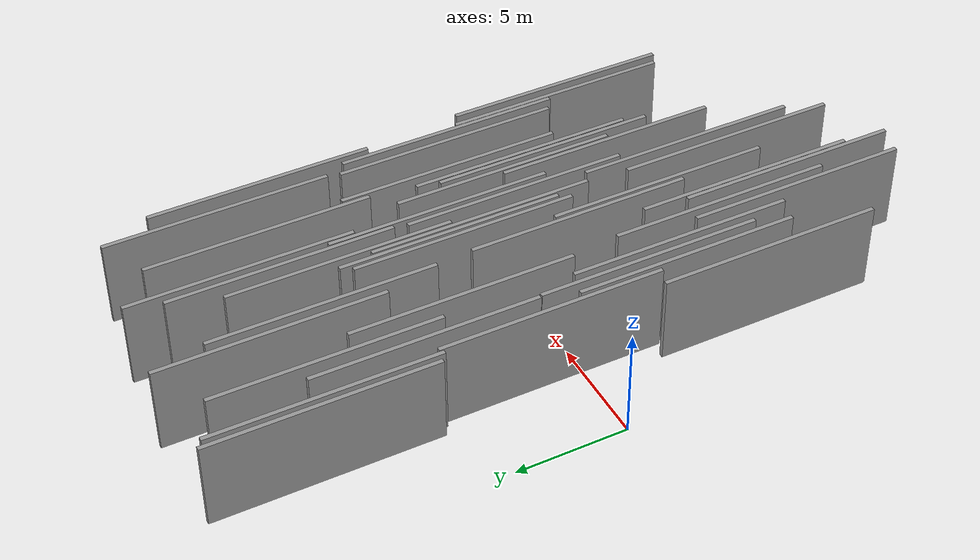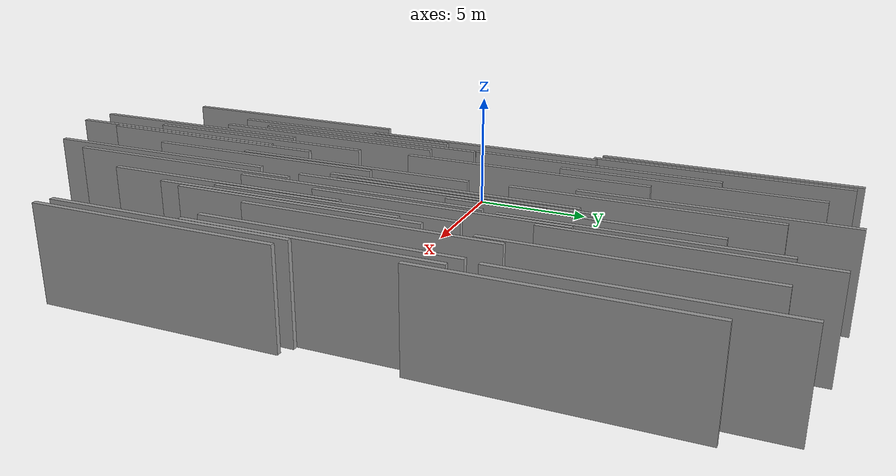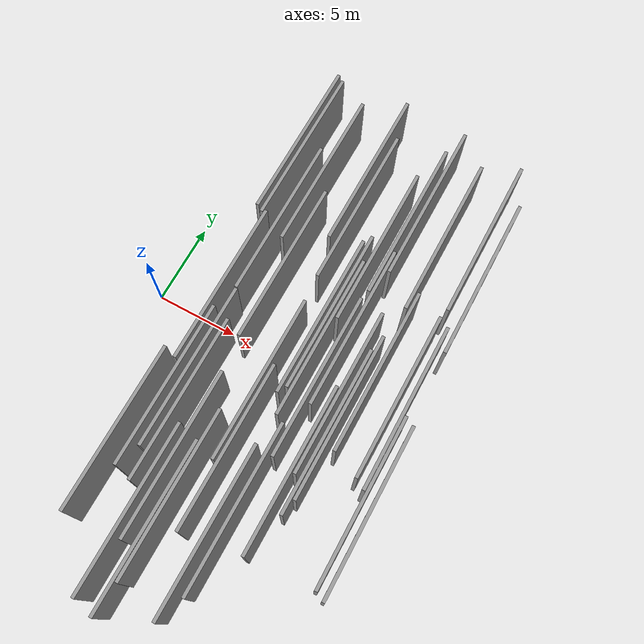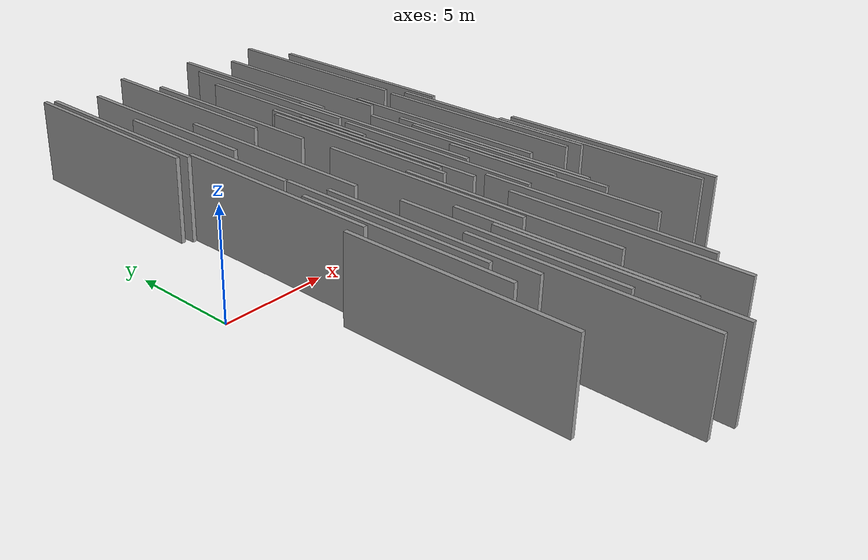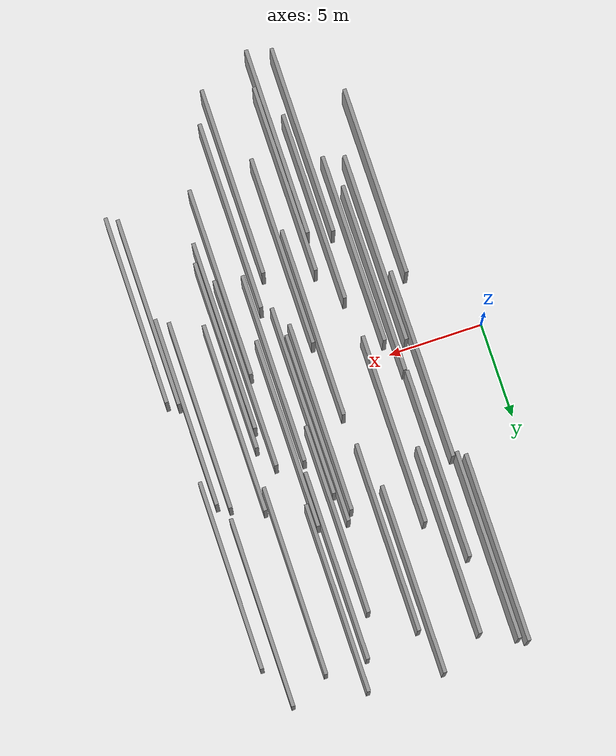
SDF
<sdf version="1.6">
 <world name="default">
  <scene>
   <sky><clouds><speed>12</speed></clouds></sky>
   <ambient>0.4 0.4 0.4 1</ambient>
   <background>0.7 0.7 0.7 1</background>
   <shadows>1</shadows>
  </scene>
  <gravity>0 0 -9.8066</gravity>
  <magnetic_field>6e-06 2.3e-05 -4.2e-05</magnetic_field>
  <physics default="0" name="default_physics" type="ode">
   <ode>
    <solver>
     <type>quick</type>
     <iters>10</iters>
     <sor>1.0</sor>
     <use_dynamic_moi_rescaling>0</use_dynamic_moi_rescaling>
    </solver>
    <constraints>
     <cfm>0</cfm>
     <erp>0.2</erp>
     <contact_max_correcting_vel>100</contact_max_correcting_vel>
     <contact_surface_layer>0.001</contact_surface_layer>
    </constraints>
   </ode>
   <max_step_size>0.004</max_step_size>
   <real_time_factor>1</real_time_factor>
   <real_time_update_rate>250</real_time_update_rate>
  </physics>
  <light name="sun" type="directional">
   <pose>0 0 10 0 0 0</pose>
   <diffuse>0.8 0.8 0.8 1</diffuse>
   <specular>0.2 0.2 0.2 1</specular>
   <attenuation>
    <range>1000</range>
    <constant>0.9</constant>
    <linear>0.01</linear>
    <quadratic>0.001</quadratic>
   </attenuation>
   <direction>-0.5 0.1 -0.9</direction>
  </light>
  <model name="grey_wall_1">
   <static>1</static>
   <pose>4.6352 6.4639 0.0 0.000000 0.000000 1.570796</pose>
   <link name="link">
    <pose>0 0 2.00 0 0 0</pose>
    <collision name="collision"><geometry><box><size>10.00 0.2 4.00</size></box></geometry></collision>
    <visual name="visual">
     <cast_shadows>0</cast_shadows>
     <geometry><box><size>10.00 0.2 4.00</size></box></geometry>
     <material>
      <script>
       <uri>model://grey_wall/materials/scripts</uri>
       <uri>model://grey_wall/materials/textures</uri>
       <name>vrc/grey_wall</name>
      </script>
     </material>
    </visual>
   </link>
  </model>
  <model name="grey_wall_2">
   <static>1</static>
   <pose>13.7201 0.9784 0.0 0.000000 0.000000 1.570796</pose>
   <link name="link">
    <pose>0 0 2.00 0 0 0</pose>
    <collision name="collision"><geometry><box><size>10.00 0.2 4.00</size></box></geometry></collision>
    <visual name="visual">
     <cast_shadows>0</cast_shadows>
     <geometry><box><size>10.00 0.2 4.00</size></box></geometry>
     <material>
      <script>
       <uri>model://grey_wall/materials/scripts</uri>
       <uri>model://grey_wall/materials/textures</uri>
       <name>vrc/grey_wall</name>
      </script>
     </material>
    </visual>
   </link>
  </model>
  <model name="grey_wall_3">
   <static>1</static>
   <pose>5.3705 10.3229 0.0 0.000000 0.000000 1.570796</pose>
   <link name="link">
    <pose>0 0 2.00 0 0 0</pose>
    <collision name="collision"><geometry><box><size>10.00 0.2 4.00</size></box></geometry></collision>
    <visual name="visual">
     <cast_shadows>0</cast_shadows>
     <geometry><box><size>10.00 0.2 4.00</size></box></geometry>
     <material>
      <script>
       <uri>model://grey_wall/materials/scripts</uri>
       <uri>model://grey_wall/materials/textures</uri>
       <name>vrc/grey_wall</name>
      </script>
     </material>
    </visual>
   </link>
  </model>
  <model name="grey_wall_4">
   <static>1</static>
   <pose>5.9149 -11.5257 0.0 0.000000 0.000000 1.570796</pose>
   <link name="link">
    <pose>0 0 2.00 0 0 0</pose>
    <collision name="collision"><geometry><box><size>10.00 0.2 4.00</size></box></geometry></collision>
    <visual name="visual">
     <cast_shadows>0</cast_shadows>
     <geometry><box><size>10.00 0.2 4.00</size></box></geometry>
     <material>
      <script>
       <uri>model://grey_wall/materials/scripts</uri>
       <uri>model://grey_wall/materials/textures</uri>
       <name>vrc/grey_wall</name>
      </script>
     </material>
    </visual>
   </link>
  </model>
  <model name="grey_wall_5">
   <static>1</static>
   <pose>11.4226 2.5769 0.0 0.000000 0.000000 1.570796</pose>
   <link name="link">
    <pose>0 0 2.00 0 0 0</pose>
    <collision name="collision"><geometry><box><size>10.00 0.2 4.00</size></box></geometry></collision>
    <visual name="visual">
     <cast_shadows>0</cast_shadows>
     <geometry><box><size>10.00 0.2 4.00</size></box></geometry>
     <material>
      <script>
       <uri>model://grey_wall/materials/scripts</uri>
       <uri>model://grey_wall/materials/textures</uri>
       <name>vrc/grey_wall</name>
      </script>
     </material>
    </visual>
   </link>
  </model>
  <model name="grey_wall_6">
   <static>1</static>
   <pose>9.5640 2.3115 0.0 0.000000 0.000000 1.570796</pose>
   <link name="link">
    <pose>0 0 2.00 0 0 0</pose>
    <collision name="collision"><geometry><box><size>10.00 0.2 4.00</size></box></geometry></collision>
    <visual name="visual">
     <cast_shadows>0</cast_shadows>
     <geometry><box><size>10.00 0.2 4.00</size></box></geometry>
     <material>
      <script>
       <uri>model://grey_wall/materials/scripts</uri>
       <uri>model://grey_wall/materials/textures</uri>
       <name>vrc/grey_wall</name>
      </script>
     </material>
    </visual>
   </link>
  </model>
  <model name="grey_wall_7">
   <static>1</static>
   <pose>13.1284 -2.2053 0.0 0.000000 0.000000 1.570796</pose>
   <link name="link">
    <pose>0 0 2.00 0 0 0</pose>
    <collision name="collision"><geometry><box><size>10.00 0.2 4.00</size></box></geometry></collision>
    <visual name="visual">
     <cast_shadows>0</cast_shadows>
     <geometry><box><size>10.00 0.2 4.00</size></box></geometry>
     <material>
      <script>
       <uri>model://grey_wall/materials/scripts</uri>
       <uri>model://grey_wall/materials/textures</uri>
       <name>vrc/grey_wall</name>
      </script>
     </material>
    </visual>
   </link>
  </model>
  <model name="grey_wall_8">
   <static>1</static>
   <pose>4.7058 -3.6011 0.0 0.000000 0.000000 1.570796</pose>
   <link name="link">
    <pose>0 0 2.00 0 0 0</pose>
    <collision name="collision"><geometry><box><size>10.00 0.2 4.00</size></box></geometry></collision>
    <visual name="visual">
     <cast_shadows>0</cast_shadows>
     <geometry><box><size>10.00 0.2 4.00</size></box></geometry>
     <material>
      <script>
       <uri>model://grey_wall/materials/scripts</uri>
       <uri>model://grey_wall/materials/textures</uri>
       <name>vrc/grey_wall</name>
      </script>
     </material>
    </visual>
   </link>
  </model>
  <model name="grey_wall_9">
   <static>1</static>
   <pose>10.6544 -8.9496 0.0 0.000000 0.000000 1.570796</pose>
   <link name="link">
    <pose>0 0 2.00 0 0 0</pose>
    <collision name="collision"><geometry><box><size>10.00 0.2 4.00</size></box></geometry></collision>
    <visual name="visual">
     <cast_shadows>0</cast_shadows>
     <geometry><box><size>10.00 0.2 4.00</size></box></geometry>
     <material>
      <script>
       <uri>model://grey_wall/materials/scripts</uri>
       <uri>model://grey_wall/materials/textures</uri>
       <name>vrc/grey_wall</name>
      </script>
     </material>
    </visual>
   </link>
  </model>
  <model name="grey_wall_10">
   <static>1</static>
   <pose>4.1410 -5.0530 0.0 0.000000 0.000000 1.570796</pose>
   <link name="link">
    <pose>0 0 2.00 0 0 0</pose>
    <collision name="collision"><geometry><box><size>10.00 0.2 4.00</size></box></geometry></collision>
    <visual name="visual">
     <cast_shadows>0</cast_shadows>
     <geometry><box><size>10.00 0.2 4.00</size></box></geometry>
     <material>
      <script>
       <uri>model://grey_wall/materials/scripts</uri>
       <uri>model://grey_wall/materials/textures</uri>
       <name>vrc/grey_wall</name>
      </script>
     </material>
    </visual>
   </link>
  </model>
  <model name="grey_wall_11">
   <static>1</static>
   <pose>12.4754 -1.0310 0.0 0.000000 0.000000 1.570796</pose>
   <link name="link">
    <pose>0 0 2.00 0 0 0</pose>
    <collision name="collision"><geometry><box><size>10.00 0.2 4.00</size></box></geometry></collision>
    <visual name="visual">
     <cast_shadows>0</cast_shadows>
     <geometry><box><size>10.00 0.2 4.00</size></box></geometry>
     <material>
      <script>
       <uri>model://grey_wall/materials/scripts</uri>
       <uri>model://grey_wall/materials/textures</uri>
       <name>vrc/grey_wall</name>
      </script>
     </material>
    </visual>
   </link>
  </model>
  <model name="grey_wall_12">
   <static>1</static>
   <pose>9.9890 -10.5965 0.0 0.000000 0.000000 1.570796</pose>
   <link name="link">
    <pose>0 0 2.00 0 0 0</pose>
    <collision name="collision"><geometry><box><size>10.00 0.2 4.00</size></box></geometry></collision>
    <visual name="visual">
     <cast_shadows>0</cast_shadows>
     <geometry><box><size>10.00 0.2 4.00</size></box></geometry>
     <material>
      <script>
       <uri>model://grey_wall/materials/scripts</uri>
       <uri>model://grey_wall/materials/textures</uri>
       <name>vrc/grey_wall</name>
      </script>
     </material>
    </visual>
   </link>
  </model>
  <model name="grey_wall_13">
   <static>1</static>
   <pose>7.7050 11.6390 0.0 0.000000 0.000000 1.570796</pose>
   <link name="link">
    <pose>0 0 2.00 0 0 0</pose>
    <collision name="collision"><geometry><box><size>10.00 0.2 4.00</size></box></geometry></collision>
    <visual name="visual">
     <cast_shadows>0</cast_shadows>
     <geometry><box><size>10.00 0.2 4.00</size></box></geometry>
     <material>
      <script>
       <uri>model://grey_wall/materials/scripts</uri>
       <uri>model://grey_wall/materials/textures</uri>
       <name>vrc/grey_wall</name>
      </script>
     </material>
    </visual>
   </link>
  </model>
  <model name="grey_wall_14">
   <static>1</static>
   <pose>15.3601 0.2854 0.0 0.000000 0.000000 1.570796</pose>
   <link name="link">
    <pose>0 0 2.00 0 0 0</pose>
    <collision name="collision"><geometry><box><size>10.00 0.2 4.00</size></box></geometry></collision>
    <visual name="visual">
     <cast_shadows>0</cast_shadows>
     <geometry><box><size>10.00 0.2 4.00</size></box></geometry>
     <material>
      <script>
       <uri>model://grey_wall/materials/scripts</uri>
       <uri>model://grey_wall/materials/textures</uri>
       <name>vrc/grey_wall</name>
      </script>
     </material>
    </visual>
   </link>
  </model>
  <model name="grey_wall_15">
   <static>1</static>
   <pose>8.2668 9.2103 0.0 0.000000 0.000000 1.570796</pose>
   <link name="link">
    <pose>0 0 2.00 0 0 0</pose>
    <collision name="collision"><geometry><box><size>10.00 0.2 4.00</size></box></geometry></collision>
    <visual name="visual">
     <cast_shadows>0</cast_shadows>
     <geometry><box><size>10.00 0.2 4.00</size></box></geometry>
     <material>
      <script>
       <uri>model://grey_wall/materials/scripts</uri>
       <uri>model://grey_wall/materials/textures</uri>
       <name>vrc/grey_wall</name>
      </script>
     </material>
    </visual>
   </link>
  </model>
  <model name="grey_wall_16">
   <static>1</static>
   <pose>6.4407 -8.0639 0.0 0.000000 0.000000 1.570796</pose>
   <link name="link">
    <pose>0 0 2.00 0 0 0</pose>
    <collision name="collision"><geometry><box><size>10.00 0.2 4.00</size></box></geometry></collision>
    <visual name="visual">
     <cast_shadows>0</cast_shadows>
     <geometry><box><size>10.00 0.2 4.00</size></box></geometry>
     <material>
      <script>
       <uri>model://grey_wall/materials/scripts</uri>
       <uri>model://grey_wall/materials/textures</uri>
       <name>vrc/grey_wall</name>
      </script>
     </material>
    </visual>
   </link>
  </model>
  <model name="grey_wall_17">
   <static>1</static>
   <pose>12.2205 -5.8652 0.0 0.000000 0.000000 1.570796</pose>
   <link name="link">
    <pose>0 0 2.00 0 0 0</pose>
    <collision name="collision"><geometry><box><size>10.00 0.2 4.00</size></box></geometry></collision>
    <visual name="visual">
     <cast_shadows>0</cast_shadows>
     <geometry><box><size>10.00 0.2 4.00</size></box></geometry>
     <material>
      <script>
       <uri>model://grey_wall/materials/scripts</uri>
       <uri>model://grey_wall/materials/textures</uri>
       <name>vrc/grey_wall</name>
      </script>
     </material>
    </visual>
   </link>
  </model>
  <model name="grey_wall_18">
   <static>1</static>
   <pose>5.2064 -5.3615 0.0 0.000000 0.000000 1.570796</pose>
   <link name="link">
    <pose>0 0 2.00 0 0 0</pose>
    <collision name="collision"><geometry><box><size>10.00 0.2 4.00</size></box></geometry></collision>
    <visual name="visual">
     <cast_shadows>0</cast_shadows>
     <geometry><box><size>10.00 0.2 4.00</size></box></geometry>
     <material>
      <script>
       <uri>model://grey_wall/materials/scripts</uri>
       <uri>model://grey_wall/materials/textures</uri>
       <name>vrc/grey_wall</name>
      </script>
     </material>
    </visual>
   </link>
  </model>
  <model name="grey_wall_19">
   <static>1</static>
   <pose>7.1819 -11.8583 0.0 0.000000 0.000000 1.570796</pose>
   <link name="link">
    <pose>0 0 2.00 0 0 0</pose>
    <collision name="collision"><geometry><box><size>10.00 0.2 4.00</size></box></geometry></collision>
    <visual name="visual">
     <cast_shadows>0</cast_shadows>
     <geometry><box><size>10.00 0.2 4.00</size></box></geometry>
     <material>
      <script>
       <uri>model://grey_wall/materials/scripts</uri>
       <uri>model://grey_wall/materials/textures</uri>
       <name>vrc/grey_wall</name>
      </script>
     </material>
    </visual>
   </link>
  </model>
  <model name="grey_wall_20">
   <static>1</static>
   <pose>6.2011 4.0828 0.0 0.000000 0.000000 1.570796</pose>
   <link name="link">
    <pose>0 0 2.00 0 0 0</pose>
    <collision name="collision"><geometry><box><size>10.00 0.2 4.00</size></box></geometry></collision>
    <visual name="visual">
     <cast_shadows>0</cast_shadows>
     <geometry><box><size>10.00 0.2 4.00</size></box></geometry>
     <material>
      <script>
       <uri>model://grey_wall/materials/scripts</uri>
       <uri>model://grey_wall/materials/textures</uri>
       <name>vrc/grey_wall</name>
      </script>
     </material>
    </visual>
   </link>
  </model>
  <model name="grey_wall_21">
   <static>1</static>
   <pose>16.7433 -5.8524 0.0 0.000000 0.000000 1.570796</pose>
   <link name="link">
    <pose>0 0 2.00 0 0 0</pose>
    <collision name="collision"><geometry><box><size>10.00 0.2 4.00</size></box></geometry></collision>
    <visual name="visual">
     <cast_shadows>0</cast_shadows>
     <geometry><box><size>10.00 0.2 4.00</size></box></geometry>
     <material>
      <script>
       <uri>model://grey_wall/materials/scripts</uri>
       <uri>model://grey_wall/materials/textures</uri>
       <name>vrc/grey_wall</name>
      </script>
     </material>
    </visual>
   </link>
  </model>
  <model name="grey_wall_22">
   <static>1</static>
   <pose>11.6684 11.3239 0.0 0.000000 0.000000 1.570796</pose>
   <link name="link">
    <pose>0 0 2.00 0 0 0</pose>
    <collision name="collision"><geometry><box><size>10.00 0.2 4.00</size></box></geometry></collision>
    <visual name="visual">
     <cast_shadows>0</cast_shadows>
     <geometry><box><size>10.00 0.2 4.00</size></box></geometry>
     <material>
      <script>
       <uri>model://grey_wall/materials/scripts</uri>
       <uri>model://grey_wall/materials/textures</uri>
       <name>vrc/grey_wall</name>
      </script>
     </material>
    </visual>
   </link>
  </model>
  <model name="grey_wall_23">
   <static>1</static>
   <pose>10.4020 7.5210 0.0 0.000000 0.000000 1.570796</pose>
   <link name="link">
    <pose>0 0 2.00 0 0 0</pose>
    <collision name="collision"><geometry><box><size>10.00 0.2 4.00</size></box></geometry></collision>
    <visual name="visual">
     <cast_shadows>0</cast_shadows>
     <geometry><box><size>10.00 0.2 4.00</size></box></geometry>
     <material>
      <script>
       <uri>model://grey_wall/materials/scripts</uri>
       <uri>model://grey_wall/materials/textures</uri>
       <name>vrc/grey_wall</name>
      </script>
     </material>
    </visual>
   </link>
  </model>
  <model name="grey_wall_24">
   <static>1</static>
   <pose>15.5157 10.8172 0.0 0.000000 0.000000 1.570796</pose>
   <link name="link">
    <pose>0 0 2.00 0 0 0</pose>
    <collision name="collision"><geometry><box><size>10.00 0.2 4.00</size></box></geometry></collision>
    <visual name="visual">
     <cast_shadows>0</cast_shadows>
     <geometry><box><size>10.00 0.2 4.00</size></box></geometry>
     <material>
      <script>
       <uri>model://grey_wall/materials/scripts</uri>
       <uri>model://grey_wall/materials/textures</uri>
       <name>vrc/grey_wall</name>
      </script>
     </material>
    </visual>
   </link>
  </model>
  <model name="grey_wall_25">
   <static>1</static>
   <pose>15.9691 -0.0881 0.0 0.000000 0.000000 1.570796</pose>
   <link name="link">
    <pose>0 0 2.00 0 0 0</pose>
    <collision name="collision"><geometry><box><size>10.00 0.2 4.00</size></box></geometry></collision>
    <visual name="visual">
     <cast_shadows>0</cast_shadows>
     <geometry><box><size>10.00 0.2 4.00</size></box></geometry>
     <material>
      <script>
       <uri>model://grey_wall/materials/scripts</uri>
       <uri>model://grey_wall/materials/textures</uri>
       <name>vrc/grey_wall</name>
      </script>
     </material>
    </visual>
   </link>
  </model>
  <model name="grey_wall_26">
   <static>1</static>
   <pose>11.0374 -0.8071 0.0 0.000000 0.000000 1.570796</pose>
   <link name="link">
    <pose>0 0 2.00 0 0 0</pose>
    <collision name="collision"><geometry><box><size>10.00 0.2 4.00</size></box></geometry></collision>
    <visual name="visual">
     <cast_shadows>0</cast_shadows>
     <geometry><box><size>10.00 0.2 4.00</size></box></geometry>
     <material>
      <script>
       <uri>model://grey_wall/materials/scripts</uri>
       <uri>model://grey_wall/materials/textures</uri>
       <name>vrc/grey_wall</name>
      </script>
     </material>
    </visual>
   </link>
  </model>
  <model name="grey_wall_27">
   <static>1</static>
   <pose>3.5579 11.1885 0.0 0.000000 0.000000 1.570796</pose>
   <link name="link">
    <pose>0 0 2.00 0 0 0</pose>
    <collision name="collision"><geometry><box><size>10.00 0.2 4.00</size></box></geometry></collision>
    <visual name="visual">
     <cast_shadows>0</cast_shadows>
     <geometry><box><size>10.00 0.2 4.00</size></box></geometry>
     <material>
      <script>
       <uri>model://grey_wall/materials/scripts</uri>
       <uri>model://grey_wall/materials/textures</uri>
       <name>vrc/grey_wall</name>
      </script>
     </material>
    </visual>
   </link>
  </model>
  <model name="grey_wall_28">
   <static>1</static>
   <pose>3.1534 11.4542 0.0 0.000000 0.000000 1.570796</pose>
   <link name="link">
    <pose>0 0 2.00 0 0 0</pose>
    <collision name="collision"><geometry><box><size>10.00 0.2 4.00</size></box></geometry></collision>
    <visual name="visual">
     <cast_shadows>0</cast_shadows>
     <geometry><box><size>10.00 0.2 4.00</size></box></geometry>
     <material>
      <script>
       <uri>model://grey_wall/materials/scripts</uri>
       <uri>model://grey_wall/materials/textures</uri>
       <name>vrc/grey_wall</name>
      </script>
     </material>
    </visual>
   </link>
  </model>
  <model name="grey_wall_29">
   <static>1</static>
   <pose>8.3974 -2.4082 0.0 0.000000 0.000000 1.570796</pose>
   <link name="link">
    <pose>0 0 2.00 0 0 0</pose>
    <collision name="collision"><geometry><box><size>10.00 0.2 4.00</size></box></geometry></collision>
    <visual name="visual">
     <cast_shadows>0</cast_shadows>
     <geometry><box><size>10.00 0.2 4.00</size></box></geometry>
     <material>
      <script>
       <uri>model://grey_wall/materials/scripts</uri>
       <uri>model://grey_wall/materials/textures</uri>
       <name>vrc/grey_wall</name>
      </script>
     </material>
    </visual>
   </link>
  </model>
  <model name="grey_wall_30">
   <static>1</static>
   <pose>10.1440 1.2391 0.0 0.000000 0.000000 1.570796</pose>
   <link name="link">
    <pose>0 0 2.00 0 0 0</pose>
    <collision name="collision"><geometry><box><size>10.00 0.2 4.00</size></box></geometry></collision>
    <visual name="visual">
     <cast_shadows>0</cast_shadows>
     <geometry><box><size>10.00 0.2 4.00</size></box></geometry>
     <material>
      <script>
       <uri>model://grey_wall/materials/scripts</uri>
       <uri>model://grey_wall/materials/textures</uri>
       <name>vrc/grey_wall</name>
      </script>
     </material>
    </visual>
   </link>
  </model>
  <model name="grey_wall_31">
   <static>1</static>
   <pose>16.4245 8.5296 0.0 0.000000 0.000000 1.570796</pose>
   <link name="link">
    <pose>0 0 2.00 0 0 0</pose>
    <collision name="collision"><geometry><box><size>10.00 0.2 4.00</size></box></geometry></collision>
    <visual name="visual">
     <cast_shadows>0</cast_shadows>
     <geometry><box><size>10.00 0.2 4.00</size></box></geometry>
     <material>
      <script>
       <uri>model://grey_wall/materials/scripts</uri>
       <uri>model://grey_wall/materials/textures</uri>
       <name>vrc/grey_wall</name>
      </script>
     </material>
    </visual>
   </link>
  </model>
  <model name="grey_wall_32">
   <static>1</static>
   <pose>12.8944 -3.1849 0.0 0.000000 0.000000 1.570796</pose>
   <link name="link">
    <pose>0 0 2.00 0 0 0</pose>
    <collision name="collision"><geometry><box><size>10.00 0.2 4.00</size></box></geometry></collision>
    <visual name="visual">
     <cast_shadows>0</cast_shadows>
     <geometry><box><size>10.00 0.2 4.00</size></box></geometry>
     <material>
      <script>
       <uri>model://grey_wall/materials/scripts</uri>
       <uri>model://grey_wall/materials/textures</uri>
       <name>vrc/grey_wall</name>
      </script>
     </material>
    </visual>
   </link>
  </model>
  <model name="grey_wall_33">
   <static>1</static>
   <pose>16.1802 -5.5635 0.0 0.000000 0.000000 1.570796</pose>
   <link name="link">
    <pose>0 0 2.00 0 0 0</pose>
    <collision name="collision"><geometry><box><size>10.00 0.2 4.00</size></box></geometry></collision>
    <visual name="visual">
     <cast_shadows>0</cast_shadows>
     <geometry><box><size>10.00 0.2 4.00</size></box></geometry>
     <material>
      <script>
       <uri>model://grey_wall/materials/scripts</uri>
       <uri>model://grey_wall/materials/textures</uri>
       <name>vrc/grey_wall</name>
      </script>
     </material>
    </visual>
   </link>
  </model>
  <model name="grey_wall_34">
   <static>1</static>
   <pose>13.4355 9.8178 0.0 0.000000 0.000000 1.570796</pose>
   <link name="link">
    <pose>0 0 2.00 0 0 0</pose>
    <collision name="collision"><geometry><box><size>10.00 0.2 4.00</size></box></geometry></collision>
    <visual name="visual">
     <cast_shadows>0</cast_shadows>
     <geometry><box><size>10.00 0.2 4.00</size></box></geometry>
     <material>
      <script>
       <uri>model://grey_wall/materials/scripts</uri>
       <uri>model://grey_wall/materials/textures</uri>
       <name>vrc/grey_wall</name>
      </script>
     </material>
    </visual>
   </link>
  </model>
  <model name="grey_wall_35">
   <static>1</static>
   <pose>11.1837 9.7561 0.0 0.000000 0.000000 1.570796</pose>
   <link name="link">
    <pose>0 0 2.00 0 0 0</pose>
    <collision name="collision"><geometry><box><size>10.00 0.2 4.00</size></box></geometry></collision>
    <visual name="visual">
     <cast_shadows>0</cast_shadows>
     <geometry><box><size>10.00 0.2 4.00</size></box></geometry>
     <material>
      <script>
       <uri>model://grey_wall/materials/scripts</uri>
       <uri>model://grey_wall/materials/textures</uri>
       <name>vrc/grey_wall</name>
      </script>
     </material>
    </visual>
   </link>
  </model>
  <model name="grey_wall_36">
   <static>1</static>
   <pose>3.7936 1.3617 0.0 0.000000 0.000000 1.570796</pose>
   <link name="link">
    <pose>0 0 2.00 0 0 0</pose>
    <collision name="collision"><geometry><box><size>10.00 0.2 4.00</size></box></geometry></collision>
    <visual name="visual">
     <cast_shadows>0</cast_shadows>
     <geometry><box><size>10.00 0.2 4.00</size></box></geometry>
     <material>
      <script>
       <uri>model://grey_wall/materials/scripts</uri>
       <uri>model://grey_wall/materials/textures</uri>
       <name>vrc/grey_wall</name>
      </script>
     </material>
    </visual>
   </link>
  </model>
  <model name="grey_wall_37">
   <static>1</static>
   <pose>3.0415 -8.3242 0.0 0.000000 0.000000 1.570796</pose>
   <link name="link">
    <pose>0 0 2.00 0 0 0</pose>
    <collision name="collision"><geometry><box><size>10.00 0.2 4.00</size></box></geometry></collision>
    <visual name="visual">
     <cast_shadows>0</cast_shadows>
     <geometry><box><size>10.00 0.2 4.00</size></box></geometry>
     <material>
      <script>
       <uri>model://grey_wall/materials/scripts</uri>
       <uri>model://grey_wall/materials/textures</uri>
       <name>vrc/grey_wall</name>
      </script>
     </material>
    </visual>
   </link>
  </model>
  <model name="grey_wall_38">
   <static>1</static>
   <pose>8.7049 -6.3973 0.0 0.000000 0.000000 1.570796</pose>
   <link name="link">
    <pose>0 0 2.00 0 0 0</pose>
    <collision name="collision"><geometry><box><size>10.00 0.2 4.00</size></box></geometry></collision>
    <visual name="visual">
     <cast_shadows>0</cast_shadows>
     <geometry><box><size>10.00 0.2 4.00</size></box></geometry>
     <material>
      <script>
       <uri>model://grey_wall/materials/scripts</uri>
       <uri>model://grey_wall/materials/textures</uri>
       <name>vrc/grey_wall</name>
      </script>
     </material>
    </visual>
   </link>
  </model>
  <model name="grey_wall_39">
   <static>1</static>
   <pose>9.8769 2.7953 0.0 0.000000 0.000000 1.570796</pose>
   <link name="link">
    <pose>0 0 2.00 0 0 0</pose>
    <collision name="collision"><geometry><box><size>10.00 0.2 4.00</size></box></geometry></collision>
    <visual name="visual">
     <cast_shadows>0</cast_shadows>
     <geometry><box><size>10.00 0.2 4.00</size></box></geometry>
     <material>
      <script>
       <uri>model://grey_wall/materials/scripts</uri>
       <uri>model://grey_wall/materials/textures</uri>
       <name>vrc/grey_wall</name>
      </script>
     </material>
    </visual>
   </link>
  </model>
  <model name="grey_wall_40">
   <static>1</static>
   <pose>7.3985 -9.8915 0.0 0.000000 0.000000 1.570796</pose>
   <link name="link">
    <pose>0 0 2.00 0 0 0</pose>
    <collision name="collision"><geometry><box><size>10.00 0.2 4.00</size></box></geometry></collision>
    <visual name="visual">
     <cast_shadows>0</cast_shadows>
     <geometry><box><size>10.00 0.2 4.00</size></box></geometry>
     <material>
      <script>
       <uri>model://grey_wall/materials/scripts</uri>
       <uri>model://grey_wall/materials/textures</uri>
       <name>vrc/grey_wall</name>
      </script>
     </material>
    </visual>
   </link>
  </model>
 </world>
</sdf>
